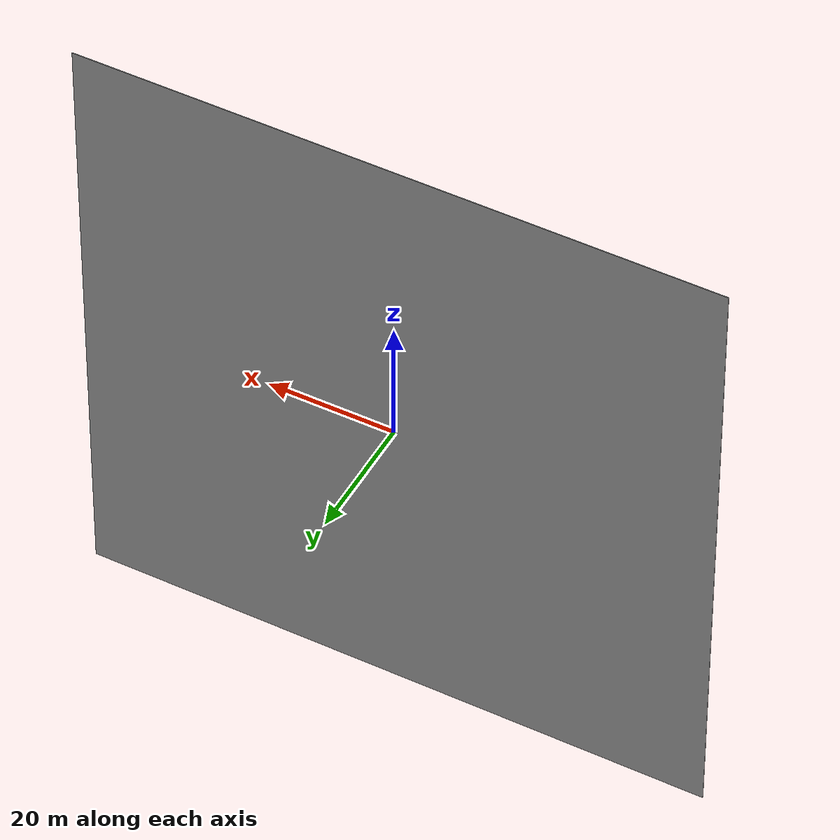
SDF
<?xml version='1.0'?>
<sdf version="1.9">
  <model name="sugarcane_field">
    <static>true</static>
    <link name="field">
      <visual name="visual">
        <geometry>
          <mesh>
            <uri>model://sugarcane_field/meshes/crop.obj</uri>
          </mesh>
        </geometry>
      </visual>
      <collision name="collision">
        <geometry>
          <mesh>
            <uri>model://sugarcane_field/meshes/crop.obj</uri>
          </mesh>
        </geometry>
      </collision>
    </link>
  </model>
</sdf>
